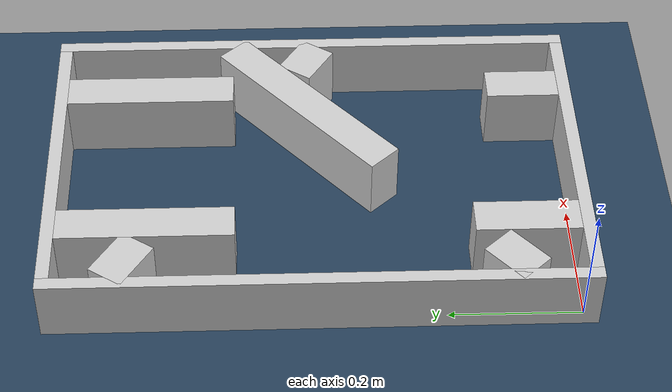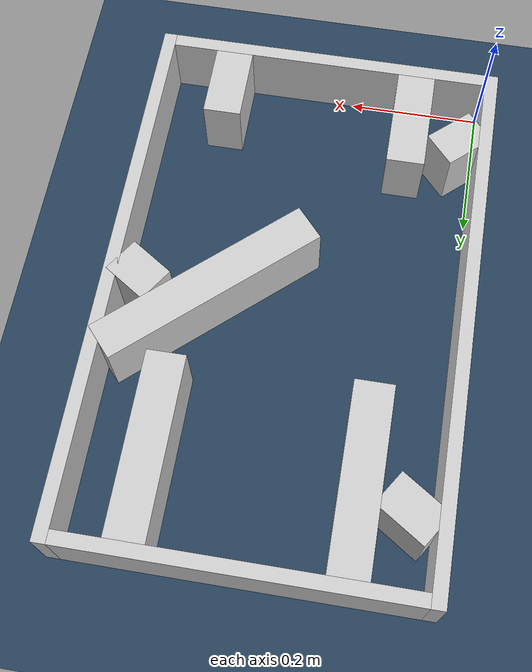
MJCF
<?xml version="1.0" ?>
<mujoco model="generated_real_template">
  <compiler angle="degree"/>
  <option timestep="0.002" integrator="implicitfast" iterations="100" cone="elliptic"/>
  <default>
    <geom density="1"/>
  </default>
  <asset>
    <texture builtin="gradient" height="3072" rgb1="0.3 0.5 0.7" rgb2="0 0 0" type="skybox" width="512"/>
    <texture builtin="checker" height="300" mark="edge" markrgb="0.8 0.8 0.8" name="groundplane" rgb1="0.2 0.3 0.4" rgb2="0.1 0.2 0.3" type="2d" width="300"/>
    <material name="groundplane" reflectance="0.2" texrepeat="5 5" texture="groundplane" texuniform="true"/>
  </asset>
  <worldbody>
    <light dir="0 0 -1" directional="true" pos="0 0 1.5"/>
    <geom name="floor" type="plane" condim="4" friction="0.5 0.005 0.001" material="groundplane" size="0 0 0.05"/>
    <body name="walls">
      <geom name="wall_boundary_left" type="box" condim="4" friction="1.0 0.005 0.0001" rgba="0.8 0.8 0.8 1" pos="-0.010000 0.387500 0.050000" euler="0 0 0.000000" size="0.010000 0.407500 0.050000"/>
      <geom name="wall_boundary_right" type="box" condim="4" friction="1.0 0.005 0.0001" rgba="0.8 0.8 0.8 1" pos="0.500000 0.387500 0.050000" euler="0 0 0.000000" size="0.010000 0.407500 0.050000"/>
      <geom name="wall_boundary_bottom" type="box" condim="4" friction="1.0 0.005 0.0001" rgba="0.8 0.8 0.8 1" pos="0.245000 -0.010000 0.050000" euler="0 0 0.000000" size="0.245000 0.010000 0.050000"/>
      <geom name="wall_boundary_top" type="box" condim="4" friction="1.0 0.005 0.0001" rgba="0.8 0.8 0.8 1" pos="0.245000 0.785000 0.050000" euler="0 0 0.000000" size="0.245000 0.010000 0.050000"/>
      <geom name="wall_inner_1_1" type="box" condim="4" friction="1.0 0.005 0.0001" rgba="0.8 0.8 0.8 1" pos="0.105401 0.078597 0.050000" euler="0 0 90.000000" size="0.078597 0.028500 0.050000"/>
      <geom name="wall_inner_1_2" type="box" condim="4" friction="1.0 0.005 0.0001" rgba="0.8 0.8 0.8 1" pos="0.105401 0.642742 0.050000" euler="0 0 90.000000" size="0.132258 0.028500 0.050000"/>
      <geom name="wall_inner_2_1" type="box" condim="4" friction="1.0 0.005 0.0001" rgba="0.8 0.8 0.8 1" pos="0.034924 0.673861 0.050000" euler="0 0 -33.076602" size="0.041679 0.028500 0.050000"/>
      <geom name="wall_inner_2_2" type="box" condim="4" friction="1.0 0.005 0.0001" rgba="0.8 0.8 0.8 1" pos="0.459760 0.397161 0.050000" euler="0 0 -33.076602" size="0.036088 0.028500 0.050000"/>
      <geom name="wall_inner_3_1" type="box" condim="4" friction="1.0 0.005 0.0001" rgba="0.8 0.8 0.8 1" pos="0.028970 0.101483 0.050000" euler="0 0 41.843817" size="0.038888 0.028500 0.050000"/>
      <geom name="wall_inner_3_2" type="box" condim="4" friction="1.0 0.005 0.0001" rgba="0.8 0.8 0.8 1" pos="0.360143 0.398042 0.050000" euler="0 0 41.843817" size="0.174312 0.028500 0.050000"/>
      <geom name="wall_inner_4_1" type="box" condim="4" friction="1.0 0.005 0.0001" rgba="0.8 0.8 0.8 1" pos="0.393295 0.056423 0.050000" euler="0 0 90.000000" size="0.056423 0.028500 0.050000"/>
      <geom name="wall_inner_4_2" type="box" condim="4" friction="1.0 0.005 0.0001" rgba="0.8 0.8 0.8 1" pos="0.393295 0.644505 0.050000" euler="0 0 90.000000" size="0.130495 0.028500 0.050000"/>
    </body>
  </worldbody>
</mujoco>
